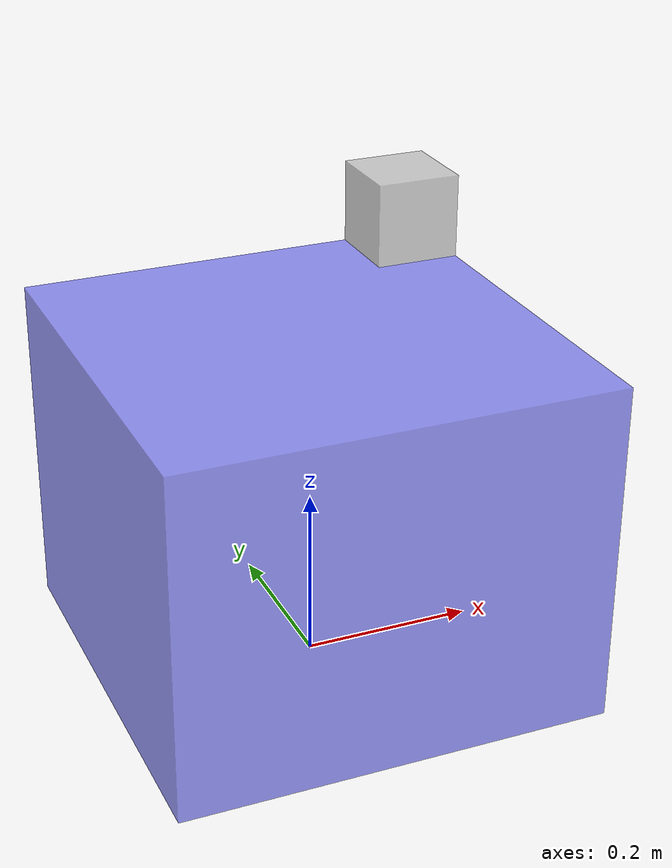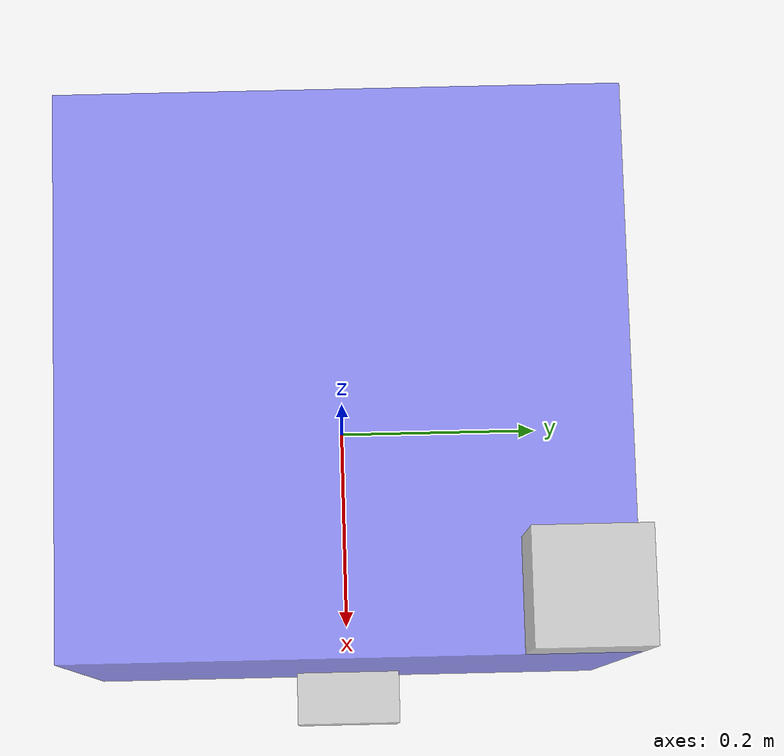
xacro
<?xml version="1.0"?>
<robot name="simple_robot" xmlns:xacro="http://ros.org/wiki/xacro" >

  <xacro:property name="body_colour" value="0.2 0.2 0.3 1" />

  <!-- Body size -->
  <xacro:property name="body_x" value="0.5" />
  <xacro:property name="body_y" value="0.5" />
  <xacro:property name="body_z" value="0.4" />

  <xacro:property name="sensor_x" value="0.1" />
  <xacro:property name="sensor_y" value="0.1" />
  <xacro:property name="sensor_z" value="0.1" />

  <xacro:property name="camera_offset_x" value="${body_x/2 - sensor_x/2}" />
  <xacro:property name="camera_offset_y" value="${body_y/2 - sensor_y/2}" />
  <xacro:property name="camera_offset_z" value="${body_z + sensor_z/2}" />

  <xacro:property name="scanner_offset_x" value="${body_x/2}" />
  <xacro:property name="scanner_offset_y" value="0.0" />
  <xacro:property name="scanner_offset_z" value="${sensor_z/2}" />

  <link name="base_link">
    <visual>
      <geometry>
        <box size="${body_x} ${body_y} ${body_z}"/>
      </geometry>
      <origin rpy="0 0 0" xyz="0 0 ${body_z/2}"/>
      <material name="blue">
        <color rgba="0.5 0.5 1 0.8" />
      </material>
    </visual>
  </link>

  <link name="camera_link">
    <visual>
      <geometry>
        <box size="${sensor_x} ${sensor_y} ${sensor_z}"/>
      </geometry>
      <origin rpy="0 0 0" xyz="0 0 0"/>
      <material name="grey">
        <color rgba="0.8 0.8 0.8 0.8" />
      </material>
    </visual>
  </link>

  <joint name="base_to_camera" type="fixed">
    <parent link="base_link"/>
    <child link="camera_link"/>
    <origin rpy="${-pi/2} 0 ${-pi/2}" xyz="${camera_offset_x} ${camera_offset_y} ${camera_offset_z}" />
  </joint>

  <link name="base_scan">
    <visual>
      <geometry>
        <box size="${sensor_x} ${sensor_y} ${sensor_z}"/>
      </geometry>
      <origin rpy="0 0 0" xyz="0 0 0"/>
      <material name="grey">
        <color rgba="0.8 0.8 0.8 0.8" />
      </material>
    </visual>
  </link>

  <joint name="base_to_scanner" type="fixed">
    <parent link="base_link"/>
    <child link="base_scan"/>
    <origin rpy="0 0 0" xyz="${scanner_offset_x} ${scanner_offset_y} ${scanner_offset_z}" />
  </joint>

</robot>
